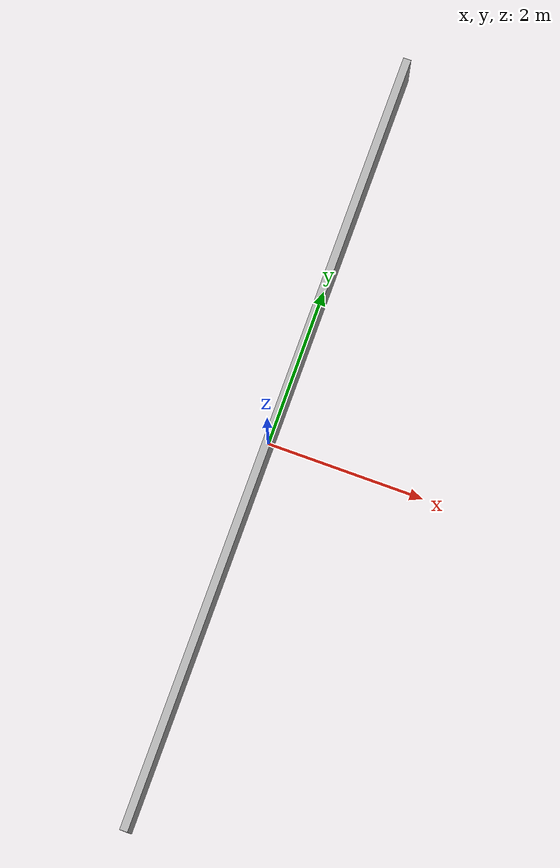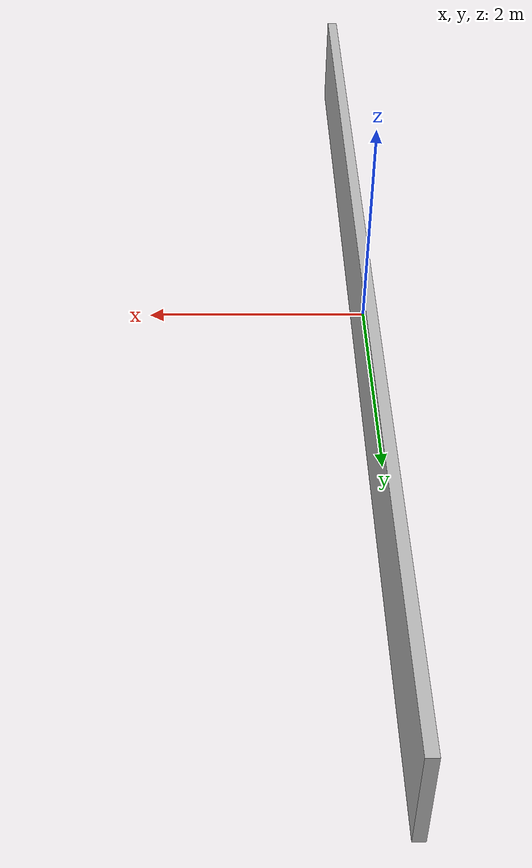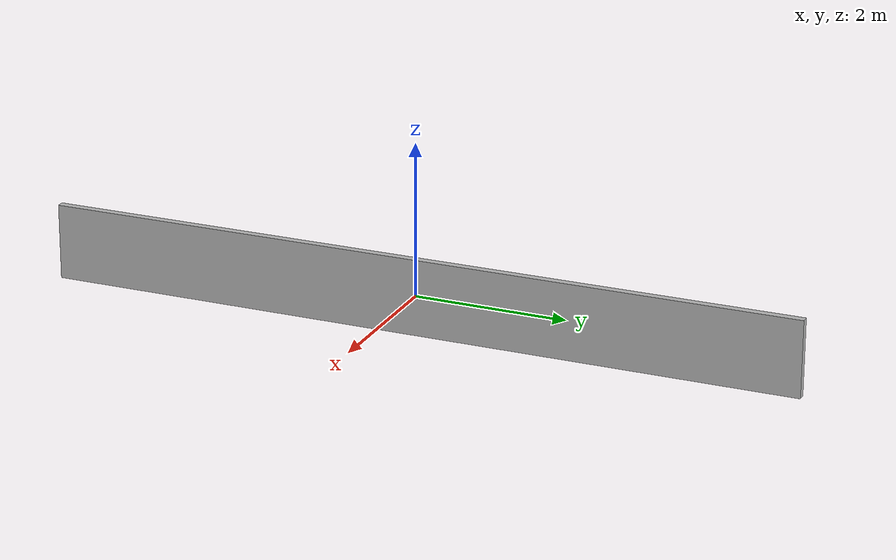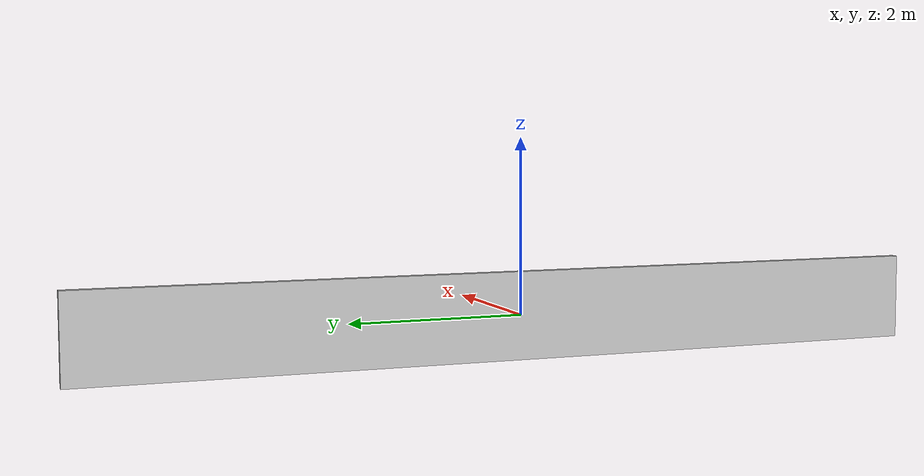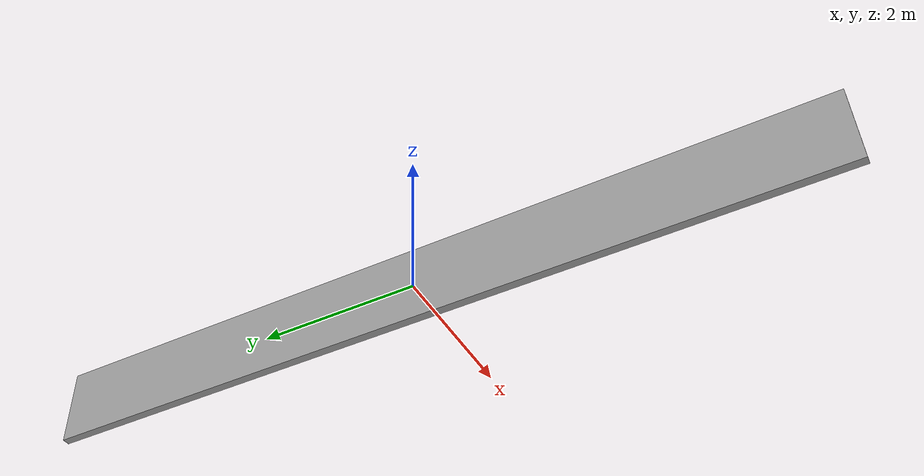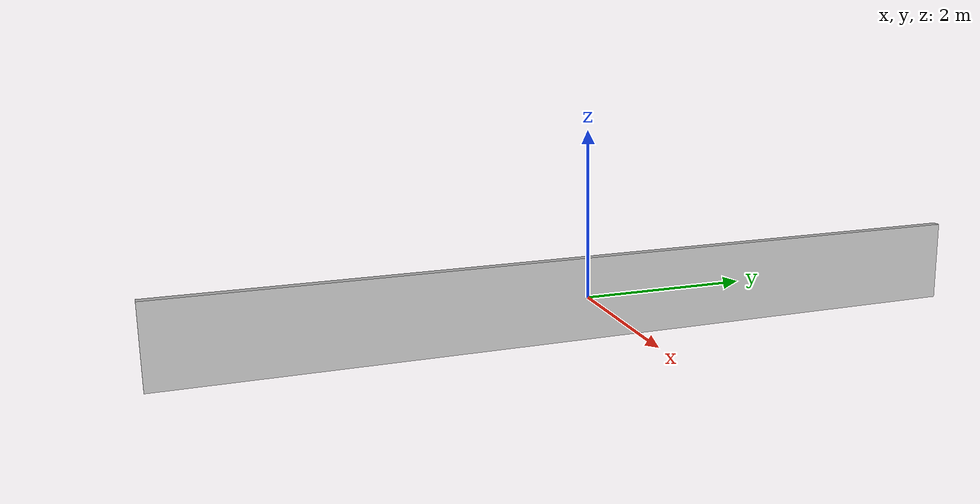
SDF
<?xml version="1.0" ?>
<sdf version="1.7">
  <model name="wall_10_y">
   <static>true</static>
    <link name="link">
      <collision name="collision">
        <geometry>
          <box>
            <size>0.1 10 1</size>  <!-- default size -->
          </box>
        </geometry>
      </collision>
      <visual name="visual">
        <geometry>
          <box>
            <size>0.1 10 1</size>
          </box>
        </geometry>
      </visual>
    </link>
  </model>
</sdf>
